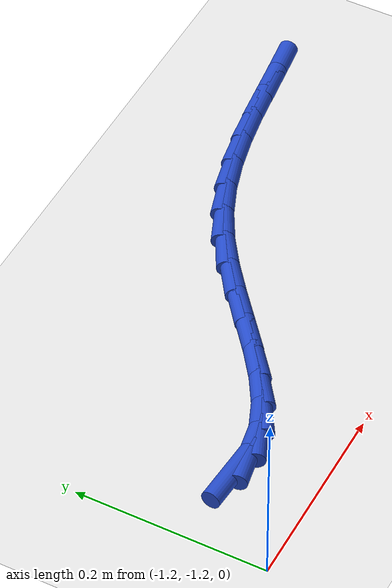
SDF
<sdf version="1.6">
 <world name="default">
  <model name="ground_plane">
   <static>1</static>
   <link name="link">
    <collision name="collision">
     <geometry><plane><normal>0 0 1</normal><size>100 100</size></plane></geometry>
     <surface><friction><ode><mu>100</mu><mu2>50</mu2></ode></friction></surface>
    </collision>
    <visual name="visual">
     <cast_shadows>0</cast_shadows>
     <geometry><plane><normal>0 0 1</normal><size>100 100</size></plane></geometry>
     <material>
      <script><uri>file://media/materials/scripts/gazebo.material</uri><name>Gazebo/WhiteGlow</name></script>
     </material>
    </visual>
   </link>
  </model>
  <model name="line">
   <link name="link_150">
    <pose>-1.1175337105029297 -1.1220652152511386 0.01 0 1.57 -0.07282526769133639</pose>
    <collision name="collision">
     <geometry><cylinder><radius>0.01</radius><length>0.08</length></cylinder></geometry>
    </collision>
    <visual name="visual">
     <material>
      <script><name>Gazebo/Blue</name><uri>file://media/materials/scripts/gazebo.material</uri></script>
     </material>
     <geometry><cylinder><radius>0.01</radius><length>0.08</length></cylinder></geometry>
    </visual>
   </link>
   <link name="link_151">
    <pose>-1.0877012803909412 -1.1242416188540447 0.01 0 1.57 0.18107117451813362</pose>
    <collision name="collision">
     <geometry><cylinder><radius>0.01</radius><length>0.08</length></cylinder></geometry>
    </collision>
    <visual name="visual">
     <material>
      <script><name>Gazebo/Blue</name><uri>file://media/materials/scripts/gazebo.material</uri></script>
     </material>
     <geometry><cylinder><radius>0.01</radius><length>0.08</length></cylinder></geometry>
    </visual>
   </link>
   <link name="link_152">
    <pose>-1.058502087665506 -1.1188959360753963 0.01 0 1.57 0.39622250574965306</pose>
    <collision name="collision">
     <geometry><cylinder><radius>0.01</radius><length>0.08</length></cylinder></geometry>
    </collision>
    <visual name="visual">
     <material>
      <script><name>Gazebo/Blue</name><uri>file://media/materials/scripts/gazebo.material</uri></script>
     </material>
     <geometry><cylinder><radius>0.01</radius><length>0.08</length></cylinder></geometry>
    </visual>
   </link>
   <link name="link_153">
    <pose>-1.0297534909314399 -1.106869030752671 0.01 0 1.57 0.54369986737986</pose>
    <collision name="collision">
     <geometry><cylinder><radius>0.01</radius><length>0.08</length></cylinder></geometry>
    </collision>
    <visual name="visual">
     <material>
      <script><name>Gazebo/Blue</name><uri>file://media/materials/scripts/gazebo.material</uri></script>
     </material>
     <geometry><cylinder><radius>0.01</radius><length>0.08</length></cylinder></geometry>
    </visual>
   </link>
   <link name="link_154">
    <pose>-1.0012281005077892 -1.0896262847664948 0.01 0 1.57 0.6343720129214369</pose>
    <collision name="collision">
     <geometry><cylinder><radius>0.01</radius><length>0.08</length></cylinder></geometry>
    </collision>
    <visual name="visual">
     <material>
      <script><name>Gazebo/Blue</name><uri>file://media/materials/scripts/gazebo.material</uri></script>
     </material>
     <geometry><cylinder><radius>0.01</radius><length>0.08</length></cylinder></geometry>
    </visual>
   </link>
   <link name="link_155">
    <pose>-0.9726985117331666 -1.0686332890680885 0.01 0 1.57 0.6804116756365054</pose>
    <collision name="collision">
     <geometry><cylinder><radius>0.01</radius><length>0.08</length></cylinder></geometry>
    </collision>
    <visual name="visual">
     <material>
      <script><name>Gazebo/Blue</name><uri>file://media/materials/scripts/gazebo.material</uri></script>
     </material>
     <geometry><cylinder><radius>0.01</radius><length>0.08</length></cylinder></geometry>
    </visual>
   </link>
   <link name="link_156">
    <pose>-0.9439373199461832 -1.0453556346086725 0.01 0 1.57 0.6895975541693027</pose>
    <collision name="collision">
     <geometry><cylinder><radius>0.01</radius><length>0.08</length></cylinder></geometry>
    </collision>
    <visual name="visual">
     <material>
      <script><name>Gazebo/Blue</name><uri>file://media/materials/scripts/gazebo.material</uri></script>
     </material>
     <geometry><cylinder><radius>0.01</radius><length>0.08</length></cylinder></geometry>
    </visual>
   </link>
   <link name="link_157">
    <pose>-0.9147171204854521 -1.0212589123394675 0.01 0 1.57 0.6649791436241496</pose>
    <collision name="collision">
     <geometry><cylinder><radius>0.01</radius><length>0.08</length></cylinder></geometry>
    </collision>
    <visual name="visual">
     <material>
      <script><name>Gazebo/Blue</name><uri>file://media/materials/scripts/gazebo.material</uri></script>
     </material>
     <geometry><cylinder><radius>0.01</radius><length>0.08</length></cylinder></geometry>
    </visual>
   </link>
   <link name="link_158">
    <pose>-0.8848105086895854 -0.9978087132116942 0.01 0 1.57 0.6055636380723523</pose>
    <collision name="collision">
     <geometry><cylinder><radius>0.01</radius><length>0.08</length></cylinder></geometry>
    </collision>
    <visual name="visual">
     <material>
      <script><name>Gazebo/Blue</name><uri>file://media/materials/scripts/gazebo.material</uri></script>
     </material>
     <geometry><cylinder><radius>0.01</radius><length>0.08</length></cylinder></geometry>
    </visual>
   </link>
   <link name="link_159">
    <pose>-0.8539900798971956 -0.9764706281765736 0.01 0 1.57 0.5080792013604846</pose>
    <collision name="collision">
     <geometry><cylinder><radius>0.01</radius><length>0.08</length></cylinder></geometry>
    </collision>
    <visual name="visual">
     <material>
      <script><name>Gazebo/Blue</name><uri>file://media/materials/scripts/gazebo.material</uri></script>
     </material>
     <geometry><cylinder><radius>0.01</radius><length>0.08</length></cylinder></geometry>
    </visual>
   </link>
   <link name="link_160">
    <pose>-0.8220357308085059 -0.9586771800360744 0.01 0 1.57 0.3948896147998852</pose>
    <collision name="collision">
     <geometry><cylinder><radius>0.01</radius><length>0.08</length></cylinder></geometry>
    </collision>
    <visual name="visual">
     <material>
      <script><name>Gazebo/Blue</name><uri>file://media/materials/scripts/gazebo.material</uri></script>
     </material>
     <geometry><cylinder><radius>0.01</radius><length>0.08</length></cylinder></geometry>
    </visual>
   </link>
   <link name="link_161">
    <pose>-0.7889429038583992 -0.9448846766197116 0.01 0 1.57 0.2982400110549067</pose>
    <collision name="collision">
     <geometry><cylinder><radius>0.01</radius><length>0.08</length></cylinder></geometry>
    </collision>
    <visual name="visual">
     <material>
      <script><name>Gazebo/Blue</name><uri>file://media/materials/scripts/gazebo.material</uri></script>
     </material>
     <geometry><cylinder><radius>0.01</radius><length>0.08</length></cylinder></geometry>
    </visual>
   </link>
   <link name="link_162">
    <pose>-0.7549529157088068 -0.9344358518689976 0.01 0 1.57 0.22216087906141688</pose>
    <collision name="collision">
     <geometry><cylinder><radius>0.01</radius><length>0.08</length></cylinder></geometry>
    </collision>
    <visual name="visual">
     <material>
      <script><name>Gazebo/Blue</name><uri>file://media/materials/scripts/gazebo.material</uri></script>
     </material>
     <geometry><cylinder><radius>0.01</radius><length>0.08</length></cylinder></geometry>
    </visual>
   </link>
   <link name="link_163">
    <pose>-0.7203204830549926 -0.9266127504559961 0.01 0 1.57 0.16733275117756213</pose>
    <collision name="collision">
     <geometry><cylinder><radius>0.01</radius><length>0.08</length></cylinder></geometry>
    </collision>
    <visual name="visual">
     <material>
      <script><name>Gazebo/Blue</name><uri>file://media/materials/scripts/gazebo.material</uri></script>
     </material>
     <geometry><cylinder><radius>0.01</radius><length>0.08</length></cylinder></geometry>
    </visual>
   </link>
   <link name="link_164">
    <pose>-0.6853003225922197 -0.9206974170527703 0.01 0 1.57 0.13362553124146637</pose>
    <collision name="collision">
     <geometry><cylinder><radius>0.01</radius><length>0.08</length></cylinder></geometry>
    </collision>
    <visual name="visual">
     <material>
      <script><name>Gazebo/Blue</name><uri>file://media/materials/scripts/gazebo.material</uri></script>
     </material>
     <geometry><cylinder><radius>0.01</radius><length>0.08</length></cylinder></geometry>
    </visual>
   </link>
   <link name="link_165">
    <pose>-0.6501471510157508 -0.915971896331383 0.01 0 1.57 0.12083254843233224</pose>
    <collision name="collision">
     <geometry><cylinder><radius>0.01</radius><length>0.08</length></cylinder></geometry>
    </collision>
    <visual name="visual">
     <material>
      <script><name>Gazebo/Blue</name><uri>file://media/materials/scripts/gazebo.material</uri></script>
     </material>
     <geometry><cylinder><radius>0.01</radius><length>0.08</length></cylinder></geometry>
    </visual>
   </link>
   <link name="link_166">
    <pose>-0.6151156850208493 -0.911718232963898 0.01 0 1.57 0.12912192970522424</pose>
    <collision name="collision">
     <geometry><cylinder><radius>0.01</radius><length>0.08</length></cylinder></geometry>
    </collision>
    <visual name="visual">
     <material>
      <script><name>Gazebo/Blue</name><uri>file://media/materials/scripts/gazebo.material</uri></script>
     </material>
     <geometry><cylinder><radius>0.01</radius><length>0.08</length></cylinder></geometry>
    </visual>
   </link>
  </model>
 </world>
</sdf>
